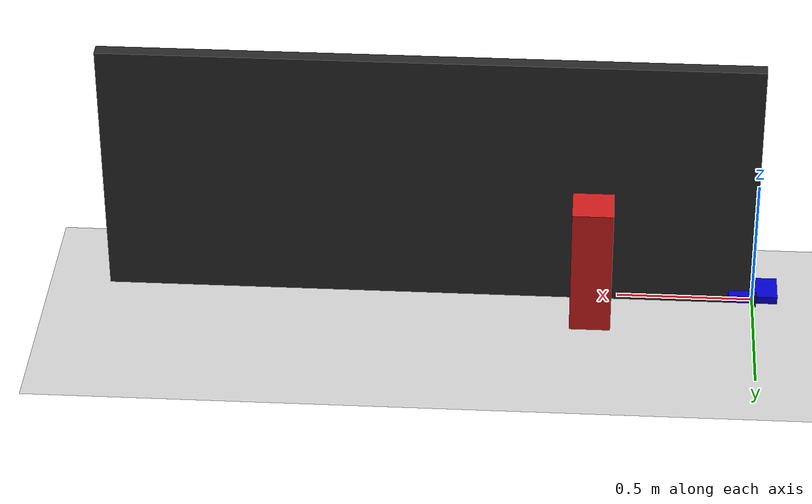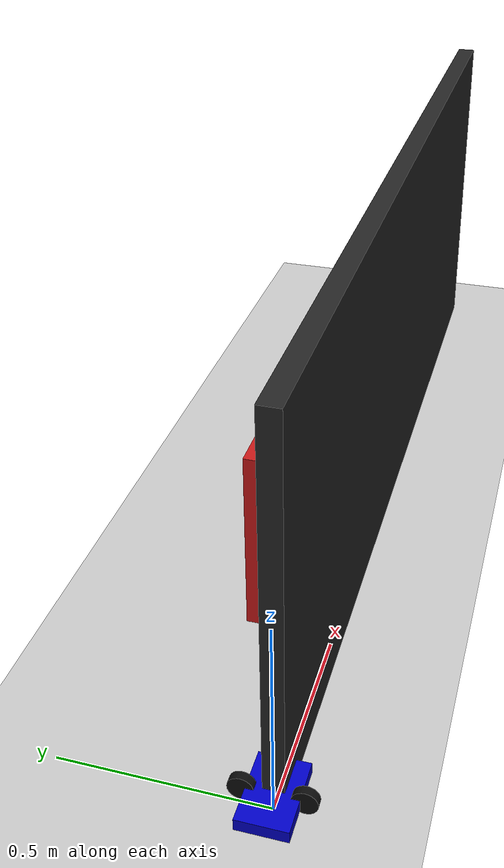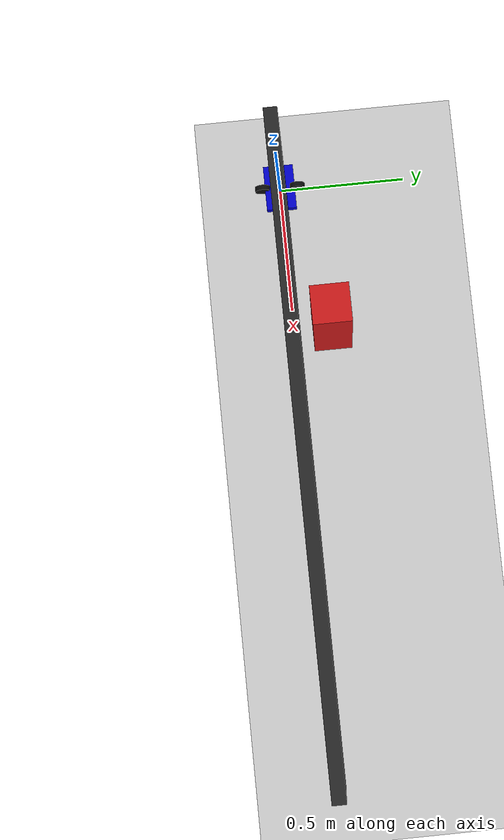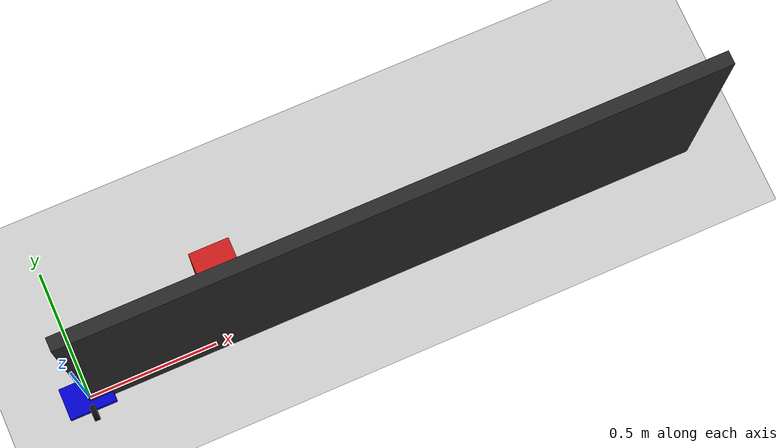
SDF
<?xml version="1.0" ?>
<sdf version="1.6">
  <world name="pro_world">
    <gravity>0 0 -9.81</gravity>

    <include>
      <uri>model://ground_plane</uri>
    </include>

    <!-- حائط خلفي ولون غامق -->
    <model name="back_wall">
      <static>true</static>
      <pose>1.2 0 0.5 0 0 0</pose>
      <link name="link">
        <collision name="col">
          <geometry><box><size>2.4 0.05 1.0</size></box></geometry>
        </collision>
        <visual name="vis">
          <geometry><box><size>2.4 0.05 1.0</size></box></geometry>
          <material><diffuse>0.15 0.15 0.15 1</diffuse></material>
        </visual>
      </link>
    </model>

    <!-- عائق أحمر -->
    <model name="box_red">
      <static>true</static>
      <pose>0.6 0.15 0.25 0 0 0</pose>
      <link name="link">
        <collision name="col"><geometry><box><size>0.15 0.15 0.5</size></box></geometry></collision>
        <visual name="vis">
          <geometry><box><size>0.15 0.15 0.5</size></box></geometry>
          <material><diffuse>0.8 0.1 0.1 1</diffuse></material>
        </visual>
      </link>
    </model>

    <!-- الروبوت -->
    <include>
      <uri>model://avoider_robot</uri>
      <pose>0 0 0 0 0 0</pose>
    </include>

    <physics type="ode">
      <real_time_update_rate>1000</real_time_update_rate>
      <max_step_size>0.001</max_step_size>
    </physics>

    <scene>
      <ambient>0.5 0.5 0.5 1</ambient>
      <background>0.5 0.6 0.9 1</background>
      <shadows>true</shadows>
    </scene>

    <gui fullscreen="0">
      <camera name="user_camera">
        <pose>2.5 -2.0 1.5 0 0.3 2.2</pose>
        <view_controller>orbit</view_controller>
      </camera>
    </gui>
  </world>
</sdf>

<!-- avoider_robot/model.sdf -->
<sdf version="1.6">
  <model name="avoider_robot">
    <pose>0 0 0.04 0 0 0</pose>
    <static>false</static>

    <!-- هيكل الروبوت -->
    <link name="base_link">
      <pose>0 0 0.04 0 0 0</pose>
      <inertial>
        <mass>0.8</mass>
        <inertia>
          <ixx>0.002</ixx><ixy>0</ixy><ixz>0</ixz>
          <iyy>0.004</iyy><iyz>0</iyz>
          <izz>0.004</izz>
        </inertia>
      </inertial>

      <collision name="base_collision">
        <geometry>
          <box><size>0.18 0.12 0.03</size></box>
        </geometry>
        <surface>
          <friction>
            <ode>
              <mu>0.8</mu>
              <mu2>0.8</mu2>
            </ode>
          </friction>
        </surface>
      </collision>

      <visual name="base_visual">
        <geometry>
          <box><size>0.18 0.12 0.03</size></box>
        </geometry>
        <material>
          <ambient>0 0 0.5 1</ambient>
          <diffuse>0 0 0.8 1</diffuse>
        </material>
      </visual>

      <!-- حساس Ray للأمام (بدون أي plugin) -->
      <sensor name="front_ray" type="ray">
        <pose>0.10 0 0.05 0 0 0</pose>
        <always_on>true</always_on>
        <update_rate>20</update_rate>
        <ray>
          <scan>
            <horizontal>
              <samples>21</samples>
              <resolution>1</resolution>
              <min_angle>-0.35</min_angle>
              <max_angle>0.35</max_angle>
            </horizontal>
          </scan>
          <range>
            <min>0.02</min>
            <max>2.8</max>
            <resolution>0.01</resolution>
          </range>
        </ray>
      </sensor>
    </link>

    <!-- عجلة يسار -->
    <link name="left_wheel_link">
      <pose>0.0 0.07 0.05 0 1.5708 0</pose>
      <inertial>
        <mass>0.05</mass>
        <inertia>
          <ixx>1e-4</ixx><ixy>0</ixy><ixz>0</ixz>
          <iyy>1e-4</iyy><iyz>0</iyz>
          <izz>1e-4</izz>
        </inertia>
      </inertial>
      <collision name="left_wheel_collision">
        <geometry>
          <cylinder><radius>0.03</radius><length>0.02</length></cylinder>
        </geometry>
        <surface>
          <friction>
            <ode>
              <mu>1.2</mu><mu2>1.2</mu2>
            </ode>
          </friction>
        </surface>
      </collision>
      <visual name="left_wheel_visual">
        <geometry>
          <cylinder><radius>0.03</radius><length>0.02</length></cylinder>
        </geometry>
        <material>
          <ambient>0.05 0.05 0.05 1</ambient>
          <diffuse>0.05 0.05 0.05 1</diffuse>
        </material>
      </visual>
    </link>

    <!-- عجلة يمين -->
    <link name="right_wheel_link">
      <pose>0.0 -0.07 0.05 0 1.5708 0</pose>
      <inertial>
        <mass>0.05</mass>
        <inertia>
          <ixx>1e-4</ixx><ixy>0</ixy><ixz>0</ixz>
          <iyy>1e-4</iyy><iyz>0</iyz>
          <izz>1e-4</izz>
        </inertia>
      </inertial>
      <collision name="right_wheel_collision">
        <geometry>
          <cylinder><radius>0.03</radius><length>0.02</length></cylinder>
        </geometry>
        <surface>
          <friction>
            <ode>
              <mu>1.2</mu><mu2>1.2</mu2>
            </ode>
          </friction>
        </surface>
      </collision>
      <visual name="right_wheel_visual">
        <geometry>
          <cylinder><radius>0.03</radius><length>0.02</length></cylinder>
        </geometry>
        <material>
          <ambient>0.05 0.05 0.05 1</ambient>
          <diffuse>0.05 0.05 0.05 1</diffuse>
        </material>
      </visual>
    </link>

    <!-- مفاصل العجلات -->
    <joint name="left_wheel_joint" type="revolute">
      <parent>base_link</parent>
      <child>left_wheel_link</child>
      <pose>0 0 0 0 0 0</pose>
      <axis>
        <xyz>0 1 0</xyz>
        <limit><lower>-1e16</lower><upper>1e16</upper></limit>
        <dynamics><friction>0.0</friction></dynamics>
      </axis>
    </joint>

    <joint name="right_wheel_joint" type="revolute">
      <parent>base_link</parent>
      <child>right_wheel_link</child>
      <pose>0 0 0 0 0 0</pose>
      <axis>
        <xyz>0 1 0</xyz>
        <limit><lower>-1e16</lower><upper>1e16</upper></limit>
        <dynamics><friction>0.0</friction></dynamics>
      </axis>
    </joint>

    <!-- هنا الـ ModelPlugin وليس داخل الـ sensor -->
    <plugin name="avoider_plugin" filename="libavoider_plugin.so">
      <left_joint>left_wheel_joint</left_joint>
      <right_joint>right_wheel_joint</right_joint>
      <safe_distance>0.28</safe_distance>
      <turn_time_ms>420</turn_time_ms>
      <speed>2.2</speed>
    </plugin>
  </model>
</sdf>
